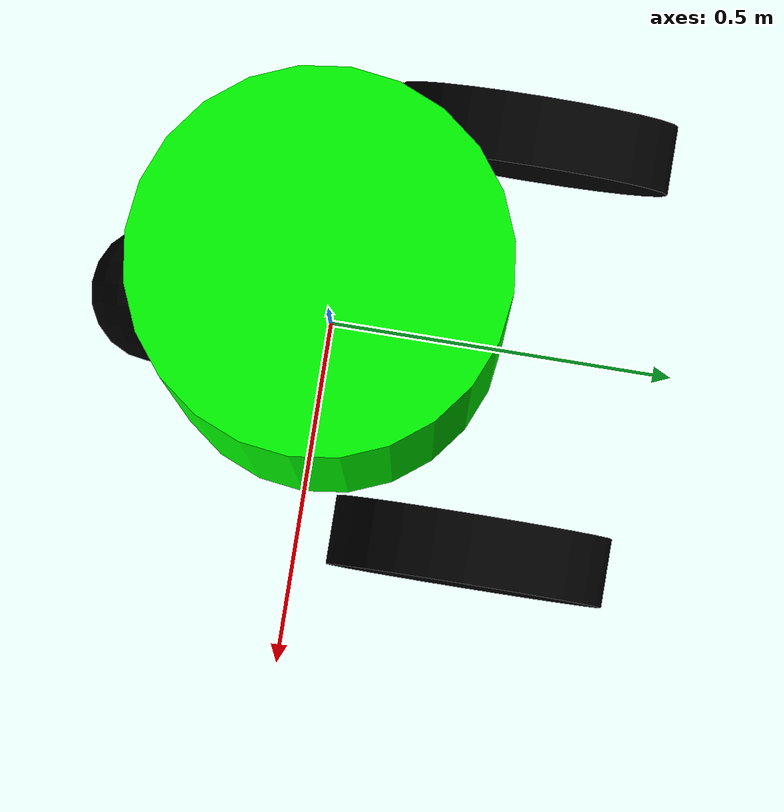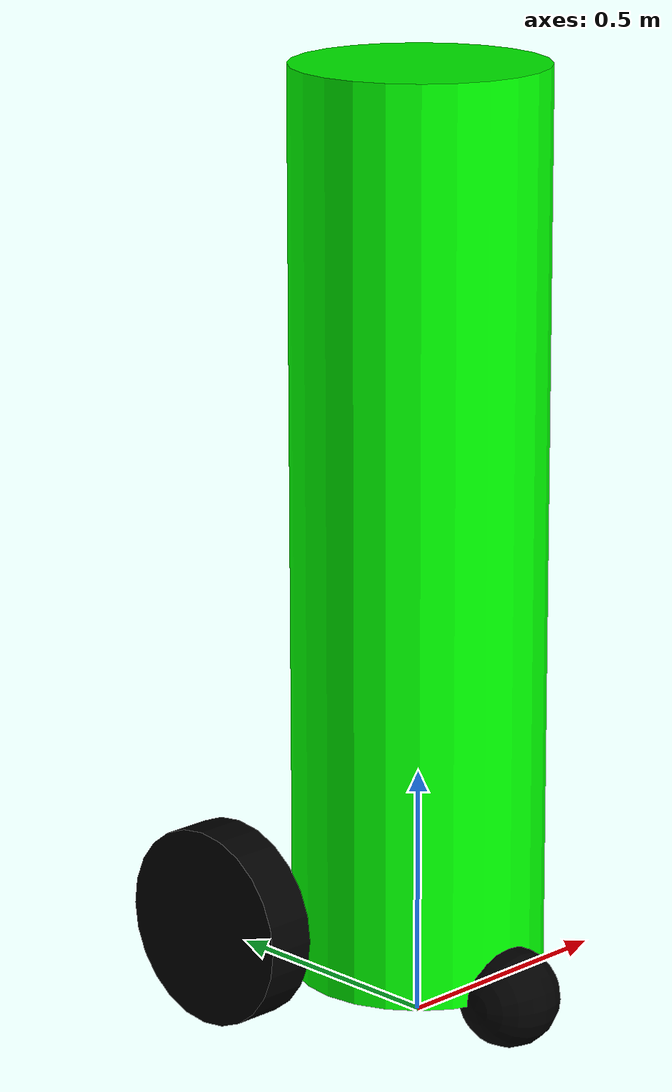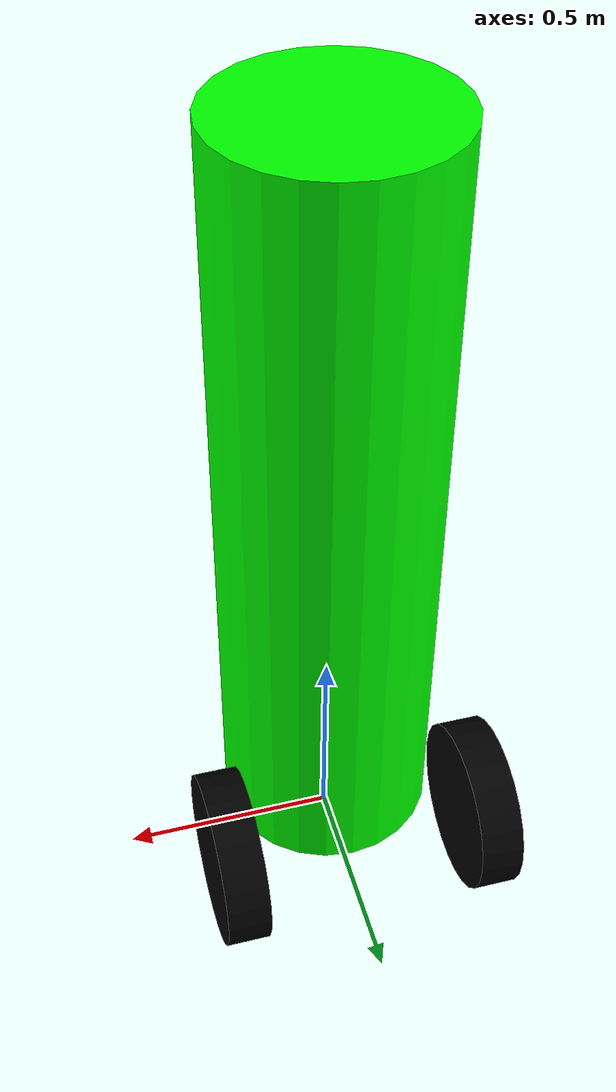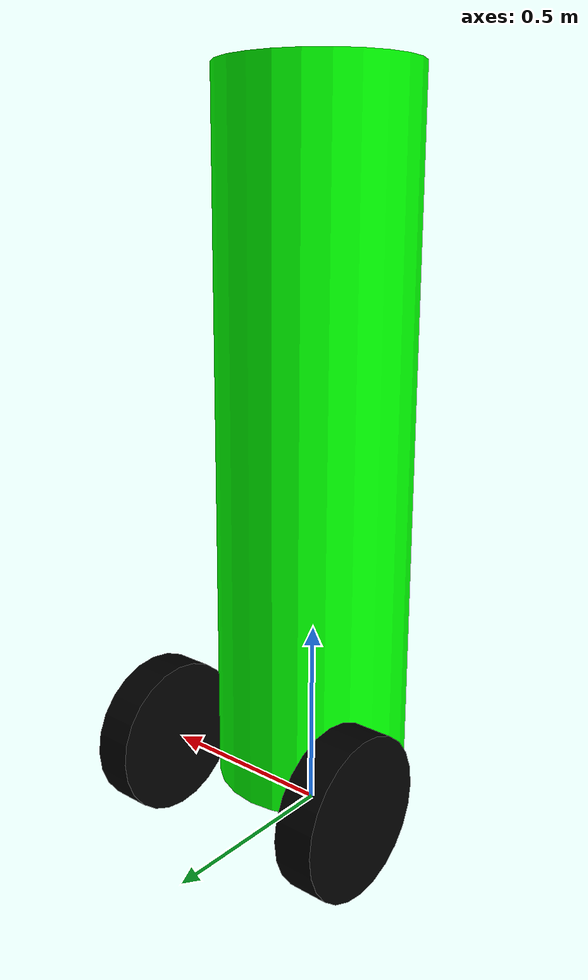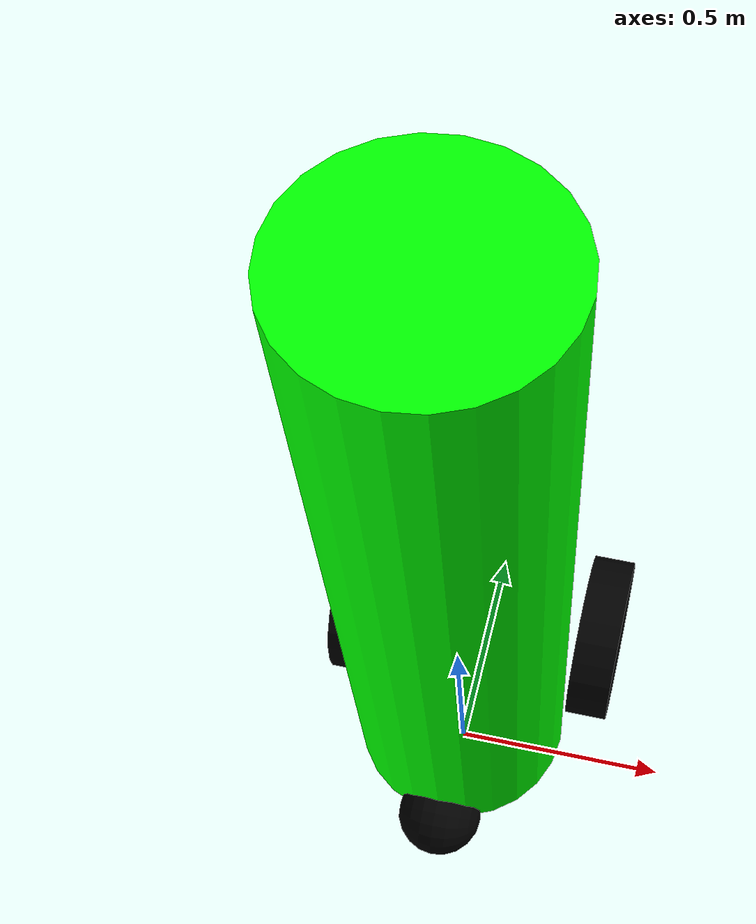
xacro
<?xml version="1.0"?>
<robot name="human" xmlns:xacro="http://ros.org/wiki/xacro">

  <!-- Colors -->
  <material name="black">
    <color rgba="0 0 0 1"/>
  </material>

  <material name="green">
    <color rgba="0 1 0 1"/>
  </material>

  <xacro:macro name="wheel_inertial" params="mass">
    <inertial>
      <mass value="${mass}" />
      <inertia ixx="0.0" ixy="0.0" ixz="0.0" iyy="1.0" iyz="0.0" izz="1.0" />
    </inertial>
  </xacro:macro>

  <!-- Human params -->
  <xacro:property name="human_rad" value="0.25" />
  <xacro:property name="human_height" value="1.8" />
  <xacro:property name="wheellen" value="0.1" />
  <xacro:property name="wheelrad" value="0.2" />
  <xacro:property name="xwheel" value="0.30" />
  <xacro:property name="ywheel" value="0.25" />
  <xacro:property name="zwheel" value="0.2" />
  <xacro:property name="pi" value="3.1415" />

  <!-- Body-->
  <link name="base_link">
    <visual>
      <origin rpy="0 0 0" xyz="0 0 ${human_height/2 + 0.1}"/>
      <geometry>
	      <cylinder length="${human_height}" radius="${human_rad}"/>
      </geometry>
      <material name="green"/>
    </visual>
    <collision>
      <origin rpy="0 0 0" xyz="0 0 ${human_height/2}"/>
      <geometry>
	      <cylinder length="${human_height}" radius="${human_rad}"/>
      </geometry>
    </collision>
    <xacro:wheel_inertial mass="100"/>
  </link>

  <!-- Wheels -->
  <xacro:macro name="wheel" params="prefix reflect">
  <link name="${prefix}_wheel_human">
    <visual>
      <origin rpy="0 ${pi/2} 0" xyz="0 0 0"/>
      <geometry>
	      <cylinder length="${wheellen}" radius="${wheelrad}"/>
      </geometry>
      <material name="black"/>
    </visual>
    <collision>
      <origin rpy="0 ${pi/2} 0" xyz="0 0 0"/>
      <geometry>
	      <cylinder length="${wheellen}" radius="${wheelrad}"/>
      </geometry>
    </collision>
    <xacro:wheel_inertial mass="2"/>
  </link>
  <joint name="${prefix}_wheel_joint_human" type="continuous">
    <axis rpy="0 0 0" xyz="1 0 0"/>
    <parent link="base_link"/>
    <child link="${prefix}_wheel_human"/>
    <origin rpy="0 0 0" xyz="${xwheel*reflect} ${ywheel} ${zwheel}"/>
  </joint>

  <!-- This block provides the simulator (Gazebo) with information on a few additional
  physical properties. See http://gazebosim.org/tutorials/?tut=ros_urdf for more-->
  <gazebo reference="${prefix}_wheel_human">
    <mu1 value="200.0"/>
    <mu2 value="100.0"/>
    <kp value="10000000.0" />
    <kd value="1.0" />
    <min_depth value="0.02" />
    <material>Gazebo/Grey</material>
  </gazebo>

  <!-- This block connects the wheel joint to an actuator (motor), which informs both
  simulation and visualization of the robot -->
  <transmission name="${prefix}_wheel_human_trans">
    <type>transmission_interface/SimpleTransmission</type>
    <actuator name="${prefix}_wheel_human_motor">
      <mechanicalReduction>1</mechanicalReduction>
    </actuator>
    <joint name="${prefix}_wheel_joint_human">
      <hardwareInterface>hardware_interface/VelocityJointInterface</hardwareInterface>
    </joint>
  </transmission>
  </xacro:macro>
  <xacro:wheel prefix="right" reflect="-1"/>
  <xacro:wheel prefix="left" reflect="1"/>

  <link name="caster_wheel_human">
    <visual>
      <origin rpy="0 ${pi/2} 0" xyz="0 0 0"/>
      <geometry>
	      <sphere radius="0.1"/>
      </geometry>
      <material name="black"/>
    </visual>
    <collision>
      <origin rpy="0 ${pi/2} 0" xyz="0 0 0"/>
      <geometry>
	      <sphere radius="0.2"/>
      </geometry>
    </collision>
    <xacro:wheel_inertial mass="2"/>
  </link>

  <joint name="caster_wheel_joint_human" type="fixed">
    <axis rpy="0 0 0" xyz="1 0 0"/>
    <parent link="base_link"/>
    <child link="caster_wheel_human"/>
    <origin rpy="0 0 0" xyz="0 ${-ywheel} ${0.1}"/>
  </joint>

    <!-- Gazebo plugin for ROS Control -->
  <gazebo>
    <plugin name="gazebo_ros_control_human" filename="libgazebo_ros_control.so">
      <robotNamespace>/</robotNamespace>
    </plugin>
  </gazebo>

  <!-- Camera -->

  <gazebo reference="camera_link">
    <material>Gazebo/Red</material>

    <sensor name="camera" type="camera">
      <pose> 0 0 0 0 0 0 </pose>
      <visualize>true</visualize>
      <update_rate>10</update_rate>
      <camera>
        <horizontal_fov>1.089</horizontal_fov>
        <image>
          <format>R8G8B8</format>
          <width>640</width>
          <height>480</height>
        </image>
        <clip>
          <near>0.05</near>
          <far>8.0</far>
        </clip>
      </camera>
      <plugin name="camera_controller" filename="libgazebo_ros_camera.so">
        <frame_name>camera_link_optical</frame_name>
      </plugin>
    </sensor>

  </gazebo>

</robot>
